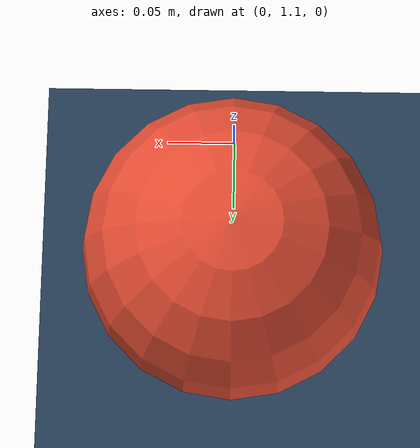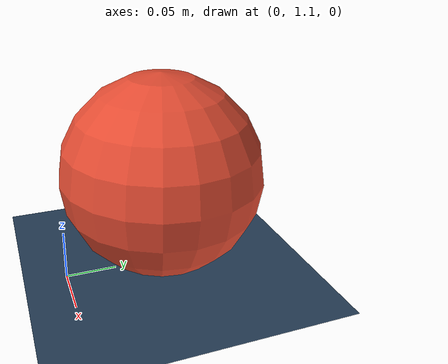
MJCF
<mujoco model="skybox_gradient">

  <visual>
    <map znear="0.01" zfar="200" />
    <headlight diffuse=".8 .8 .8" ambient=".2 .2 .2" specular="1 1 1" />
    <global azimuth="140" elevation="-20" />
  </visual>

  <asset>
    <texture type="skybox" builtin="gradient" rgb1="0.35 0.55 0.85" rgb2="0.02 0.03 0.08" width="512" height="512" />
    <texture name="grid" type="2d" builtin="checker" width="512" height="512" rgb1=".1 .2 .3" rgb2=".2 .3 .4" />
    <material name="grid" texture="grid" texrepeat="4 4" texuniform="true" reflectance=".2" />
  </asset>

  <worldbody>
    <light pos="0 0 3" dir="0 0 -1" directional="true" />
    <camera name="main" pos="0 0 0.2" xyaxes="1 0 0 0 -0.2 1" resolution="640 480" />

    <geom name="floor" size="4 4 0.05" type="plane" material="grid" />
    <geom name="ball" type="sphere" pos="0 1.2 0.1" size="0.1" rgba="0.9 0.3 0.2 1" />
  </worldbody>

</mujoco>
